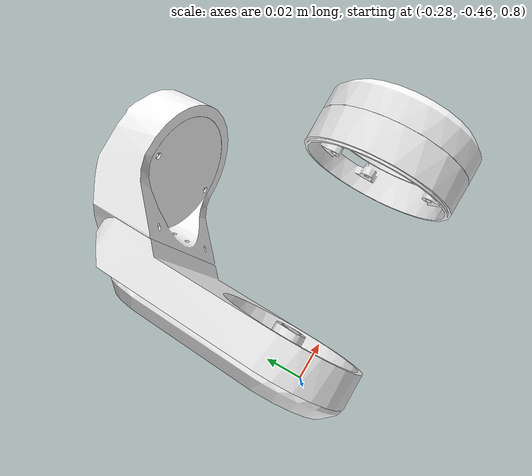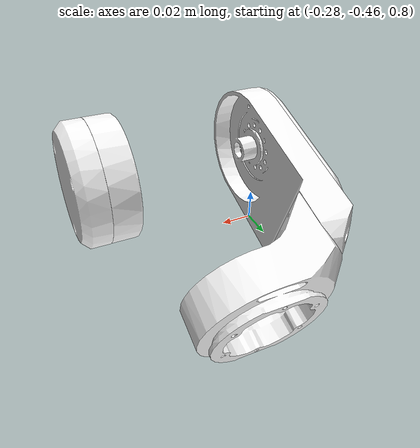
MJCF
<mujoco model="right_arm_5">
  <default>
    <default class="visual">
      <geom group="2" type="mesh" contype="0" conaffinity="0"/>
    </default>
    <default class="collision">
      <geom group="3" type="mesh"/>
    </default>
  </default>
  <asset>
    <material name="247,247,247_30.001" specular="1.0" shininess="0.2" rgba="0.968627 0.968627 0.968627 1.000000"/>
    <material name="247,247,247_31.001" specular="1.0" shininess="0.2" rgba="0.968627 0.968627 0.968627 1.000000"/>
    <material name="247,247,247_34.001" specular="1.0" shininess="0.2" rgba="0.968627 0.968627 0.968627 1.000000"/>
    <material name="247,247,247_35.001" specular="1.0" shininess="0.2" rgba="0.968627 0.968627 0.968627 1.000000"/>
    <material name="247,247,247_42.001" specular="1.0" shininess="0.2" rgba="0.968627 0.968627 0.968627 1.000000"/>
    <material name="247,247,247_43.001" specular="1.0" shininess="0.2" rgba="0.968627 0.968627 0.968627 1.000000"/>
    <mesh file="right_arm_5_0.obj"/>
    <mesh file="right_arm_5_1.obj"/>
    <mesh file="right_arm_5_2.obj"/>
    <mesh file="right_arm_5_3.obj"/>
    <mesh file="right_arm_5_4.obj"/>
    <mesh file="right_arm_5_5.obj"/>
  </asset>
  <worldbody>
    <body name="right_arm_5">
      <geom mesh="right_arm_5_0" material="247,247,247_35.001" class="visual"/>
      <geom mesh="right_arm_5_1" material="247,247,247_42.001" class="visual"/>
      <geom mesh="right_arm_5_2" material="247,247,247_43.001" class="visual"/>
      <geom mesh="right_arm_5_3" material="247,247,247_34.001" class="visual"/>
      <geom mesh="right_arm_5_4" material="247,247,247_31.001" class="visual"/>
      <geom mesh="right_arm_5_5" material="247,247,247_30.001" class="visual"/>
      <geom mesh="right_arm_5_0" class="collision"/>
      <geom mesh="right_arm_5_1" class="collision"/>
      <geom mesh="right_arm_5_2" class="collision"/>
      <geom mesh="right_arm_5_3" class="collision"/>
      <geom mesh="right_arm_5_4" class="collision"/>
      <geom mesh="right_arm_5_5" class="collision"/>
    </body>
  </worldbody>
</mujoco>
